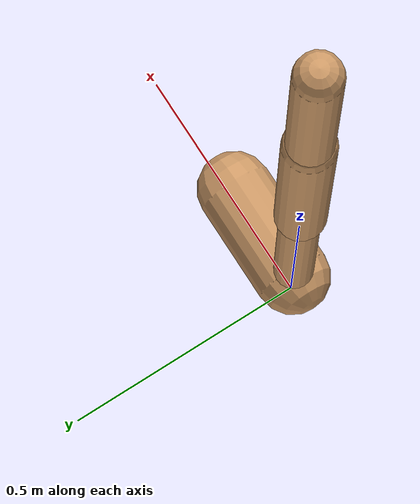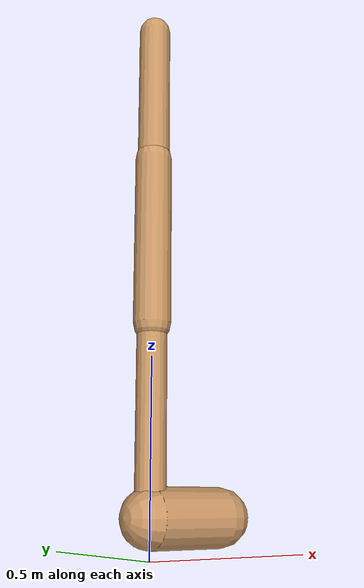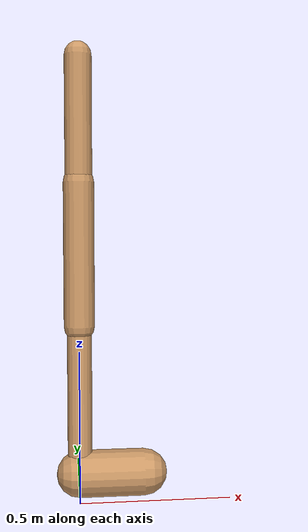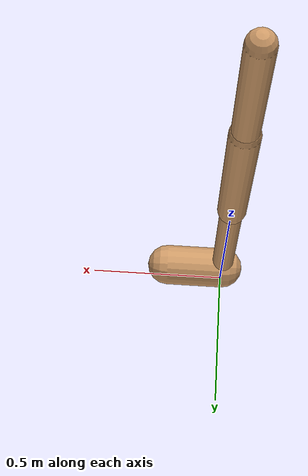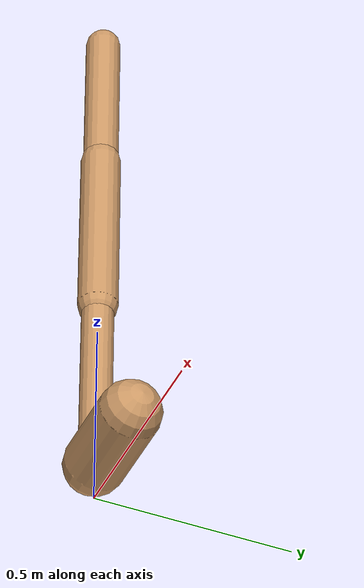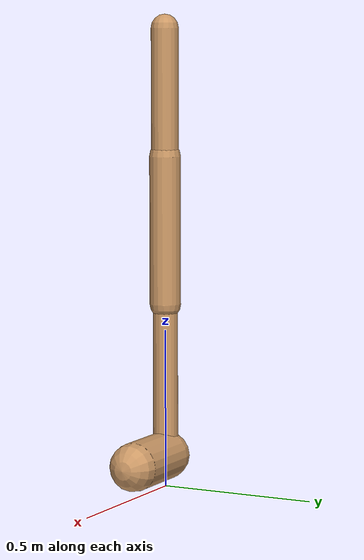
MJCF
<mujoco model="walker2d">
  <compiler angle="degree" coordinate="global" inertiafromgeom="true" />
  <default>
    <joint armature="0.01" damping=".1" limited="true" />
    <geom conaffinity="0" condim="3" contype="1" density="1000" friction="0.8 .1 .1" rgba="0.8 0.6 .4 1" />
  </default>
  <option integrator="RK4" timestep="0.002" />
  <worldbody>

    <body name="torso" pos="0 0 0.0319141949649382">
      <joint armature="0" axis="1 0 0" damping="0" limited="false" name="ignorex" pos="0 0 0" stiffness="0" type="slide" />
      <joint armature="0" axis="0 0 1" damping="0" limited="false" name="ignorez" pos="0 0 0" ref="1.25" stiffness="0" type="slide" />
      <joint armature="0" axis="0 1 0" damping="0" limited="false" name="ignorey" pos="0 0 0" stiffness="0" type="hinge" />
      <geom fromto="0 0 1.45 0 0 1.05" name="torso_geom" size="0.04348972327962375" type="capsule" />
      <body name="thigh">
        <joint axis="0 -1 0" name="thigh_joint" pos="0 0 1.05" range="-150 0" type="hinge" />
        <geom fromto="0.0 0.0 1.05 0.0 0.0 0.5848827497534503" name="thigh_geom" size="0.04949613330314406" type="capsule" />
        <body name="leg" pos="0.0 0.0 -0.01511725024654964">
          <joint axis="0 -1 0" name="leg_joint" pos="0 0 0.6" range="-150 0" type="hinge" />
          <geom fromto="0.0 0.0 0.6 0.0 0.0 0.08320305528161148" name="leg_geom" size="0.03959690664251525" type="capsule" />
          <body name="foot" pos="0.0 0.0 -0.016796944718388523">
            <joint axis="0 -1 0" name="foot_joint" pos="0 0 0.1" range="-45 45" type="hinge" />
            <geom fromto="-0.0 0.0 0.1 0.20942047678882236 0.0 0.1" name="foot_geom" size="0.07603007072866817" type="capsule" />
          </body>
        </body>
      </body>

      <body name="thigh_left">
        <joint axis="0 -1 0" name="thigh_left_joint" pos="0 0 1.05" range="-150 0" type="hinge" />
        <geom fromto="0.0 0.0 1.05 0.0 0.0 0.5848827497534503" name="thigh_left_geom" rgba=".7 .3 .6 1" size="0.04949613330314406" type="capsule" />
        <body name="leg_left" pos="0.0 0.0 -0.01511725024654964">
          <joint axis="0 -1 0" name="leg_left_joint" pos="0 0 0.6" range="-150 0" type="hinge" />
          <geom fromto="0.0 0.0 0.6 0.0 0.0 0.08320305528161148" name="leg_left_geom" rgba=".7 .3 .6 1" size="0.03959690664251525" type="capsule" />
          <body name="foot_left" pos="0.0 0.0 -0.016796944718388523">
            <joint axis="0 -1 0" name="foot_left_joint" pos="0 0 0.1" range="-45 45" type="hinge" />
            <geom fromto="-0.0 0.0 0.1 0.20942047678882236 0.0 0.1" name="foot_left_geom" rgba=".7 .3 .6 1" size="0.07603007072866817" type="capsule" />
          </body>
        </body>
      </body>
    </body>
  </worldbody>
  <actuator>

    <motor ctrllimited="true" ctrlrange="-1.0 1.0" gear="100" joint="thigh_joint" />
    <motor ctrllimited="true" ctrlrange="-1.0 1.0" gear="100" joint="leg_joint" />
    <motor ctrllimited="true" ctrlrange="-1.0 1.0" gear="100" joint="foot_joint" />
    <motor ctrllimited="true" ctrlrange="-1.0 1.0" gear="100" joint="thigh_left_joint" />
    <motor ctrllimited="true" ctrlrange="-1.0 1.0" gear="100" joint="leg_left_joint" />
    <motor ctrllimited="true" ctrlrange="-1.0 1.0" gear="100" joint="foot_left_joint" />

  </actuator>
</mujoco>
